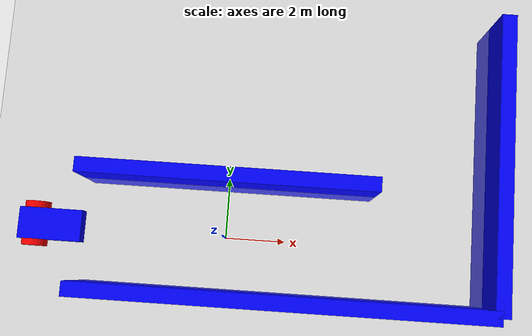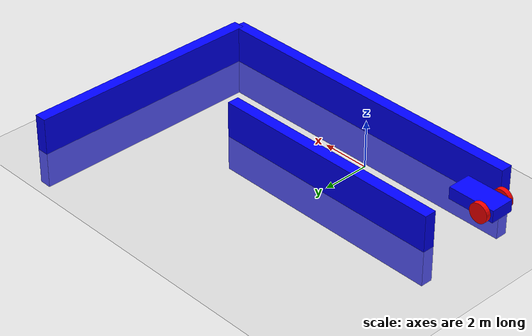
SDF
<?xml version="1.0" ?>
<sdf version="1.8">
    <world name="sim_world">
        <physics name="1ms" type="ignored">
            <max_step_size>0.001</max_step_size>
            <real_time_factor>1.0</real_time_factor>
        </physics>
        <plugin
            filename="ignition-gazebo-physics-system"
            name="ignition::gazebo::systems::Physics">
        </plugin>
        <plugin
            filename="ignition-gazebo-user-commands-system"
            name="ignition::gazebo::systems::UserCommands">
        </plugin>
        <plugin
            filename="ignition-gazebo-scene-broadcaster-system"
            name="ignition::gazebo::systems::SceneBroadcaster">
        </plugin>
        <plugin filename="ignition-gazebo-imu-system"
                name="ignition::gazebo::systems::Imu">
        </plugin>
        <plugin filename="ignition-gazebo-sensors-system"
                name="ignition::gazebo::systems::Sensors">
            <render_engine>ogre2</render_engine>
        </plugin>
        <plugin filename="ignition-gazebo-contact-system"
                name="ignition::gazebo::systems::Contact">
        </plugin>
        <gui fullscreen="0">
          <!-- 3D scene -->
          <plugin filename="MinimalScene" name="3D View">
          <gz-gui>
            <title>3D View</title>
            <property type="bool" key="showTitleBar">false</property>
            <property type="string" key="state">docked</property>
          </gz-gui>

          <engine>ogre2</engine>
          <scene>scene</scene>
          <ambient_light>0.4 0.4 0.4</ambient_light>
          <background_color>0.8 0.8 0.8</background_color>
          <camera_pose>-6 0 6 0 0.5 0</camera_pose>
          <camera_clip>
            <near>0.25</near>
            <far>25000</far>
          </camera_clip>
          </plugin>

          <!-- Plugins that add functionality to the scene -->
          <plugin filename="EntityContextMenuPlugin" name="Entity context menu">
          <gz-gui>
            <property key="state" type="string">floating</property>
            <property key="width" type="double">5</property>
            <property key="height" type="double">5</property>
            <property key="showTitleBar" type="bool">false</property>
          </gz-gui>
          </plugin>
          <plugin filename="GzSceneManager" name="Scene Manager">
          <gz-gui>
            <property key="resizable" type="bool">false</property>
            <property key="width" type="double">5</property>
            <property key="height" type="double">5</property>
            <property key="state" type="string">floating</property>
            <property key="showTitleBar" type="bool">false</property>
          </gz-gui>
          </plugin>
          <plugin filename="InteractiveViewControl" name="Interactive view control">
          <gz-gui>
            <property key="resizable" type="bool">false</property>
            <property key="width" type="double">5</property>
            <property key="height" type="double">5</property>
            <property key="state" type="string">floating</property>
            <property key="showTitleBar" type="bool">false</property>
          </gz-gui>
          </plugin>
          <plugin filename="CameraTracking" name="Camera Tracking">
          <gz-gui>
            <property key="resizable" type="bool">false</property>
            <property key="width" type="double">5</property>
            <property key="height" type="double">5</property>
            <property key="state" type="string">floating</property>
            <property key="showTitleBar" type="bool">false</property>
          </gz-gui>
          </plugin>
          <plugin filename="MarkerManager" name="Marker manager">
          <gz-gui>
            <property key="resizable" type="bool">false</property>
            <property key="width" type="double">5</property>
            <property key="height" type="double">5</property>
            <property key="state" type="string">floating</property>
            <property key="showTitleBar" type="bool">false</property>
          </gz-gui>
          </plugin>
          <plugin filename="SelectEntities" name="Select Entities">
          <gz-gui>
            <anchors target="Select entities">
              <line own="right" target="right"/>
              <line own="top" target="top"/>
            </anchors>
            <property key="resizable" type="bool">false</property>
            <property key="width" type="double">5</property>
            <property key="height" type="double">5</property>
            <property key="state" type="string">floating</property>
            <property key="showTitleBar" type="bool">false</property>
          </gz-gui>
          </plugin>
          <plugin filename="VisualizationCapabilities" name="Visualization Capabilities">
          <gz-gui>
            <property key="resizable" type="bool">false</property>
            <property key="width" type="double">5</property>
            <property key="height" type="double">5</property>
            <property key="state" type="string">floating</property>
            <property key="showTitleBar" type="bool">false</property>
          </gz-gui>
          </plugin>

          <plugin filename="Spawn" name="Spawn Entities">
          <gz-gui>
            <anchors target="Select entities">
              <line own="right" target="right"/>
              <line own="top" target="top"/>
            </anchors>
            <property key="resizable" type="bool">false</property>
            <property key="width" type="double">5</property>
            <property key="height" type="double">5</property>
            <property key="state" type="string">floating</property>
            <property key="showTitleBar" type="bool">false</property>
          </gz-gui>
          </plugin>

          <!-- World control -->
          <plugin filename="WorldControl" name="World control">
          <gz-gui>
            <title>World control</title>
            <property type="bool" key="showTitleBar">false</property>
            <property type="bool" key="resizable">false</property>
            <property type="double" key="height">72</property>
            <property type="double" key="width">121</property>
            <property type="double" key="z">1</property>

            <property type="string" key="state">floating</property>
            <anchors target="3D View">
              <line own="left" target="left"/>
              <line own="bottom" target="bottom"/>
            </anchors>
          </gz-gui>

          <play_pause>true</play_pause>
          <step>true</step>
          <start_paused>true</start_paused>
          <use_event>true</use_event>

          </plugin>

          <!-- World statistics -->
          <plugin filename="WorldStats" name="World stats">
          <gz-gui>
            <title>World stats</title>
            <property type="bool" key="showTitleBar">false</property>
            <property type="bool" key="resizable">false</property>
            <property type="double" key="height">110</property>
            <property type="double" key="width">290</property>
            <property type="double" key="z">1</property>

            <property type="string" key="state">floating</property>
            <anchors target="3D View">
              <line own="right" target="right"/>
              <line own="bottom" target="bottom"/>
            </anchors>
          </gz-gui>

          <sim_time>true</sim_time>
          <real_time>true</real_time>
          <real_time_factor>true</real_time_factor>
          <iterations>true</iterations>
          </plugin>

          <!-- Insert simple shapes -->
          <plugin filename="Shapes" name="Shapes">
          <gz-gui>
            <property key="resizable" type="bool">false</property>
            <property key="x" type="double">0</property>
            <property key="y" type="double">0</property>
            <property key="width" type="double">250</property>
            <property key="height" type="double">50</property>
            <property key="state" type="string">floating</property>
            <property key="showTitleBar" type="bool">false</property>
            <property key="cardBackground" type="string">#666666</property>
          </gz-gui>
          </plugin>

          <!-- Insert lights -->
          <plugin filename="Lights" name="Lights">
          <gz-gui>
            <property key="resizable" type="bool">false</property>
            <property key="x" type="double">250</property>
            <property key="y" type="double">0</property>
            <property key="width" type="double">150</property>
            <property key="height" type="double">50</property>
            <property key="state" type="string">floating</property>
            <property key="showTitleBar" type="bool">false</property>
            <property key="cardBackground" type="string">#666666</property>
          </gz-gui>
          </plugin>

          <!-- Translate / rotate -->
          <plugin filename="TransformControl" name="Transform control">
          <gz-gui>
            <property key="resizable" type="bool">false</property>
            <property key="x" type="double">0</property>
            <property key="y" type="double">50</property>
            <property key="width" type="double">250</property>
            <property key="height" type="double">50</property>
            <property key="state" type="string">floating</property>
            <property key="showTitleBar" type="bool">false</property>
            <property key="cardBackground" type="string">#777777</property>
          </gz-gui>
          </plugin>

          <!-- Screenshot -->
          <plugin filename="Screenshot" name="Screenshot">
          <gz-gui>
            <property key="resizable" type="bool">false</property>
            <property key="x" type="double">250</property>
            <property key="y" type="double">50</property>
            <property key="width" type="double">50</property>
            <property key="height" type="double">50</property>
            <property key="state" type="string">floating</property>
            <property key="showTitleBar" type="bool">false</property>
            <property key="cardBackground" type="string">#777777</property>
          </gz-gui>
          </plugin>

          <!-- Video recorder -->
          <plugin filename="VideoRecorder" name="VideoRecorder">
          <gz-gui>
            <property key="resizable" type="bool">false</property>
            <property key="x" type="double">300</property>
            <property key="y" type="double">50</property>
            <property key="width" type="double">50</property>
            <property key="height" type="double">50</property>
            <property key="state" type="string">floating</property>
            <property key="showTitleBar" type="bool">false</property>
            <property key="cardBackground" type="string">#777777</property>
          </gz-gui>

          <record_video>
            <use_sim_time>true</use_sim_time>
            <lockstep>false</lockstep>
            <bitrate>4000000</bitrate>
          </record_video>
          </plugin>

          <!-- Inspector -->
          <plugin filename="ComponentInspector" name="Component inspector">
          <gz-gui>
            <property type="string" key="state">docked_collapsed</property>
          </gz-gui>
          </plugin>

          <!-- Entity tree -->
          <plugin filename="EntityTree" name="Entity tree">
          <gz-gui>
            <property type="string" key="state">docked_collapsed</property>
          </gz-gui>
          </plugin>

          <!-- View angle -->
          <plugin filename="ViewAngle" name="View angle">
          <gz-gui>
            <property type="string" key="state">docked_collapsed</property>
          </gz-gui>
          </plugin>

            <!-- KeyPublisher plugin-->
            <plugin filename="KeyPublisher" name="Key Publisher"/>

        </gui>

        <light type="directional" name="sun">
            <cast_shadows>true</cast_shadows>
            <pose>0 0 10 0 0 0</pose>
            <diffuse>0.8 0.8 0.8 1</diffuse>
            <specular>0.2 0.2 0.2 1</specular>
            <attenuation>
                <range>1000</range>
                <constant>0.9</constant>
                <linear>0.01</linear>
                <quadratic>0.001</quadratic>
            </attenuation>
            <direction>-0.5 0.1 -0.9</direction>
        </light>

        <model name="environment">
            <static>true</static>
            <link name="ground">
                <collision name="collision">
                <geometry>
                    <plane>
                    <normal>0 0 1</normal>
                    </plane>
                </geometry>
                </collision>
                <visual name="visual">
                <geometry>
                    <plane>
                    <normal>0 0 1</normal>
                    <size>100 100</size>
                    </plane>
                </geometry>
                <material>
                    <ambient>0.8 0.8 0.8 1</ambient>
                    <diffuse>0.8 0.8 0.8 1</diffuse>
                    <specular>0.8 0.8 0.8 1</specular>
                </material>
                </visual>
            </link>
        </model>

        <model name='wall'>
            <static>true</static>
            <pose>0 2 0 0 0 0</pose>
            <link name='box'>
                <visual name='visual'>
                    <geometry>
                        <box>
                            <size>10 0.5 3.0</size>
                        </box>
                    </geometry>
                    <material>
                        <ambient>0.0 0.0 1.0 1</ambient>
                        <diffuse>0.0 0.0 1.0 1</diffuse>
                        <specular>0.0 0.0 1.0 1</specular>
                    </material>
                </visual>
                <collision name='collision'>
                    <geometry>
                        <box>
                            <size>10 0.5 3.0</size>
                        </box>
                    </geometry>
                </collision>
            </link>
        </model>

        <model name='wall1'>
            <static>true</static>
            <pose>2 -2 0 0 0 0</pose>
            <link name='box'>
                <visual name='visual'>
                    <geometry>
                        <box>
                            <size>14 0.5 3.0</size>
                        </box>
                    </geometry>
                    <material>
                        <ambient>0.0 0.0 1.0 1</ambient>
                        <diffuse>0.0 0.0 1.0 1</diffuse>
                        <specular>0.0 0.0 1.0 1</specular>
                    </material>
                </visual>
                <collision name='collision'>
                    <geometry>
                        <box>
                            <size>14 0.5 3.0</size>
                        </box>
                    </geometry>
                </collision>
            </link>
        </model>

        <model name='wall2'>
            <static>true</static>
            <pose>9 3 0 0 0 0</pose>
            <link name='box'>
                <visual name='visual'>
                    <geometry>
                        <box>
                            <size>0.5 10 3.0</size>
                        </box>
                    </geometry>
                    <material>
                        <ambient>0.0 0.0 1.0 1</ambient>
                        <diffuse>0.0 0.0 1.0 1</diffuse>
                        <specular>0.0 0.0 1.0 1</specular>
                    </material>
                </visual>
                <collision name='collision'>
                    <geometry>
                        <box>
                            <size>0.5 10 3.0</size>
                        </box>
                    </geometry>
                </collision>
            </link>
        </model>

        <model name='robot' canonical_link='chassis'>
            <pose relative_to='world'>-6 0 1 0 0 0</pose>   <!--the pose is relative to the world by default-->

            <frame name="lidar_frame" attached_to='chassis'>
                <pose>0.8 0 0.5 0 0 0</pose>
            </frame>

            <frame name="camera_frame" attached_to='chassis'>
                <pose>0.8 0 0.5 0 0 0</pose>
            </frame>

            <frame name="camera_optical_frame" attached_to='camera_frame'>
                <pose>0 0 0 -1.57 0 -1.57</pose>
            </frame>

            <link name='chassis'>
                <pose relative_to='__model__'>0.5 0 0.4 0 0 0</pose>
                <inertial> <!--inertial properties of the link mass, inertia matix-->
                    <mass>1.14395</mass>
                    <inertia>
                        <ixx>0.126164</ixx>
                        <ixy>0</ixy>
                        <ixz>0</ixz>
                        <iyy>0.416519</iyy>
                        <iyz>0</iyz>
                        <izz>0.481014</izz>
                    </inertia>
                </inertial>
                <visual name='visual'>
                    <geometry>
                        <box>
                            <size>2.0 1.0 0.5</size> <!--question: this size is in meter-->
                        </box>
                    </geometry>
                    <!--let's add color to our link-->
                    <material>
                        <ambient>0.0 0.0 1.0 1</ambient>
                        <diffuse>0.0 0.0 1.0 1</diffuse>
                        <specular>0.0 0.0 1.0 1</specular>
                    </material>
                </visual>
                <collision name='collision'> <!--todo: describe why we need the collision-->
                    <geometry>
                        <box>
                            <size>2.0 1.0 0.5</size>
                        </box>
                    </geometry>
                </collision>
                <sensor name="imu_sensor" type="imu">
                    <always_on>1</always_on>
                    <update_rate>1</update_rate>
                    <visualize>true</visualize>
                    <topic>imu</topic>
                </sensor>
                <sensor name='gpu_lidar' type='gpu_lidar'>"
                    <pose relative_to='lidar_frame'>0 0 0 0 0 0</pose>
                    <topic>lidar</topic>
                    <update_rate>10</update_rate>
                    <ray>
                    <scan>
                        <horizontal>
                            <samples>256</samples>
                            <resolution>1</resolution>
                            <min_angle>-3.14159</min_angle>
                            <max_angle>3.14159</max_angle>
                        </horizontal>
                        <vertical>
                            <samples>1</samples>
                            <resolution>1</resolution>
                            <min_angle>0</min_angle>
                            <max_angle>0</max_angle>
                        </vertical>
                    </scan>
                    <range>
                        <min>0.08</min>
                        <max>20.0</max>
                        <resolution>0.01</resolution>
                    </range>
                    </ray>
                    <alwaysOn>1</alwaysOn>
                    <visualize>true</visualize>
                </sensor>

                <sensor name="camera" type="camera">
                    <pose relative_to="camera_frame">0 0 0 0 0 0</pose>
                    <camera>
                        <horizontal_fov>1.047</horizontal_fov>
                        <image>
                            <width>320</width>
                            <height>240</height>
                        </image>
                        <clip>
                            <near>0.1</near>
                            <far>100</far>
                        </clip>
                    </camera>
                    <always_on>1</always_on>
                    <update_rate>30</update_rate>
                    <visualize>true</visualize>
                    <topic>camera</topic>
                </sensor>
            </link>

            <!--let's build the left wheel-->
            <link name='left_wheel'>
                <pose relative_to="chassis">-0.5 0.6 0 -1.5707 0 0</pose> <!--angles are in radian-->
                <inertial>
                    <mass>2</mass>
                    <inertia>
                        <ixx>0.145833</ixx>
                        <ixy>0</ixy>
                        <ixz>0</ixz>
                        <iyy>0.145833</iyy>
                        <iyz>0</iyz>
                        <izz>0.125</izz>
                    </inertia>
                </inertial>
                <visual name='visual'>
                    <geometry>
                        <cylinder>
                            <radius>0.4</radius>
                            <length>0.2</length>
                        </cylinder>
                    </geometry>
                    <material>
                        <ambient>1.0 0.0 0.0 1</ambient>
                        <diffuse>1.0 0.0 0.0 1</diffuse>
                        <specular>1.0 0.0 0.0 1</specular>
                    </material>
                </visual>
                <collision name='collision'>
                    <geometry>
                        <cylinder>
                            <radius>0.4</radius>
                            <length>0.2</length>
                        </cylinder>
                    </geometry>
                </collision>
            </link>

            <!--copy and paste for right wheel but change position-->
            <link name='right_wheel'>
                <pose relative_to="chassis">-0.5 -0.6 0 -1.5707 0 0</pose> <!--angles are in radian-->
                <inertial>
                    <mass>1</mass>
                    <inertia>
                        <ixx>0.145833</ixx>
                        <ixy>0</ixy>
                        <ixz>0</ixz>
                        <iyy>0.145833</iyy>
                        <iyz>0</iyz>
                        <izz>0.125</izz>
                    </inertia>
                </inertial>
                <visual name='visual'>
                    <geometry>
                        <cylinder>
                            <radius>0.4</radius>
                            <length>0.2</length>
                        </cylinder>
                    </geometry>
                    <material>
                        <ambient>1.0 0.0 0.0 1</ambient>
                        <diffuse>1.0 0.0 0.0 1</diffuse>
                        <specular>1.0 0.0 0.0 1</specular>
                    </material>
                </visual>
                <collision name='collision'>
                    <geometry>
                        <cylinder>
                            <radius>0.4</radius>
                            <length>0.2</length>
                        </cylinder>
                    </geometry>
                </collision>
            </link>

            <frame name="caster_frame" attached_to='chassis'>
                <pose>0.8 0 -0.2 0 0 0</pose>
            </frame>

            <!--caster wheel-->
            <link name='caster'>
                <pose relative_to='caster_frame'/>
                <inertial>
                    <mass>1</mass>
                    <inertia>
                        <ixx>0.1</ixx>
                        <ixy>0</ixy>
                        <ixz>0</ixz>
                        <iyy>0.1</iyy>
                        <iyz>0</iyz>
                        <izz>0.1</izz>
                    </inertia>
                </inertial>
                <visual name='visual'>
                    <geometry>
                        <sphere>
                            <radius>0.2</radius>
                        </sphere>
                    </geometry>
                    <material>
                        <ambient>0.0 1 0.0 1</ambient>
                        <diffuse>0.0 1 0.0 1</diffuse>
                        <specular>0.0 1 0.0 1</specular>
                    </material>
                </visual>
                <collision name='collision'>
                    <geometry>
                        <sphere>
                            <radius>0.2</radius>
                        </sphere>
                    </geometry>
                </collision>
            </link>

            <!--connecting these links together using joints-->
            <joint name='left_wheel_joint' type='revolute'> <!--continous joint is not supported yet-->
                <pose relative_to='left_wheel'/>
                <parent>chassis</parent>
                <child>left_wheel</child>
                <axis>
                    <xyz expressed_in='__model__'>0 1 0</xyz> <!--can be descired to any frame or even arbitrary frames-->
                    <limit>
                        <lower>-1.79769e+308</lower>    <!--negative infinity-->
                        <upper>1.79769e+308</upper>     <!--positive infinity-->
                    </limit>
                </axis>
            </joint>

            <joint name='right_wheel_joint' type='revolute'>
                <pose relative_to='right_wheel'/>
                <parent>chassis</parent>
                <child>right_wheel</child>
                <axis>
                    <xyz expressed_in='__model__'>0 1 0</xyz>
                    <limit>
                        <lower>-1.79769e+308</lower>    <!--negative infinity-->
                        <upper>1.79769e+308</upper>     <!--positive infinity-->
                    </limit>
                </axis>
            </joint>

            <!--different type of joints ball joint--> <!--defult value is the child-->
            <joint name='caster_wheel' type='ball'>
                <parent>chassis</parent>
                <child>caster</child>
            </joint>

            <!--diff drive plugin-->
            <plugin
                filename="ignition-gazebo-diff-drive-system"
                name="ignition::gazebo::systems::DiffDrive">
                <left_joint>left_wheel_joint</left_joint>
                <right_joint>right_wheel_joint</right_joint>
                <wheel_separation>1.2</wheel_separation>
                <wheel_radius>0.4</wheel_radius>
                <odom_publish_frequency>1</odom_publish_frequency>
                <topic>cmd_vel</topic>
            </plugin>
            <plugin
                filename="libignition-gazebo-pose-publisher-system.so"
                name="ignition::gazebo::systems::PosePublisher">
                <topicName>tf</topicName>
                <publish_link_pose>true</publish_link_pose>
                <publish_sensor_pose>true</publish_sensor_pose>
                <publish_collision_pose>false</publish_collision_pose>
                <publish_visual_pose>false</publish_visual_pose>
                <publish_nested_model_pose>true</publish_nested_model_pose> <!-- this bit is important -->
                <use_pose_vector_msg>true</use_pose_vector_msg>
                <static_publisher>true</static_publisher>
                <static_update_frequency>10</static_update_frequency>
            </plugin>
        </model>

        <!-- Moving Forward-->
        <plugin filename="ignition-gazebo-triggered-publisher-system"
                name="ignition::gazebo::systems::TriggeredPublisher">
            <input type="ignition.msgs.Int32" topic="/keyboard/keypress">
                <match field="data">16777235</match>
            </input>
            <output type="ignition.msgs.Twist" topic="/cmd_vel">
                linear: {x: 0.5}, angular: {z: 0.0}
            </output>
        </plugin>

        <!-- Moving Backward-->
        <plugin filename="ignition-gazebo-triggered-publisher-system"
                name="ignition::gazebo::systems::TriggeredPublisher">
            <input type="ignition.msgs.Int32" topic="/keyboard/keypress">
                <match field="data">16777237</match>
            </input>
            <output type="ignition.msgs.Twist" topic="/cmd_vel">
                linear: {x: -0.5}, angular: {z: 0.0}
            </output>
        </plugin>

        <!-- Rotating right-->
        <plugin filename="ignition-gazebo-triggered-publisher-system"
                name="ignition::gazebo::systems::TriggeredPublisher">
            <input type="ignition.msgs.Int32" topic="/keyboard/keypress">
                <match field="data">16777236</match>
            </input>
            <output type="ignition.msgs.Twist" topic="/cmd_vel">
                linear: {x: 0.0}, angular: {z: -0.5}
            </output>
        </plugin>

        <!--Rotating left-->
        <plugin filename="ignition-gazebo-triggered-publisher-system"
                name="ignition::gazebo::systems::TriggeredPublisher">
            <input type="ignition.msgs.Int32" topic="/keyboard/keypress">
                <match field="data">16777234</match>
            </input>
            <output type="ignition.msgs.Twist" topic="/cmd_vel">
                linear: {x: 0.0}, angular: {z: 0.5}
            </output>
        </plugin>

        <!--stop when hit the wall-->
        <plugin filename="ignition-gazebo-triggered-publisher-system"
                name="ignition::gazebo::systems::TriggeredPublisher">
            <input type="ignition.msgs.Boolean" topic="/wall/touched">
                <match>data: true</match>
            </input>
            <output type="ignition.msgs.Twist" topic="/cmd_vel">
                linear: {x: 0.0}, angular: {z: 0.0}
            </output>
        </plugin>

    </world>
</sdf>
